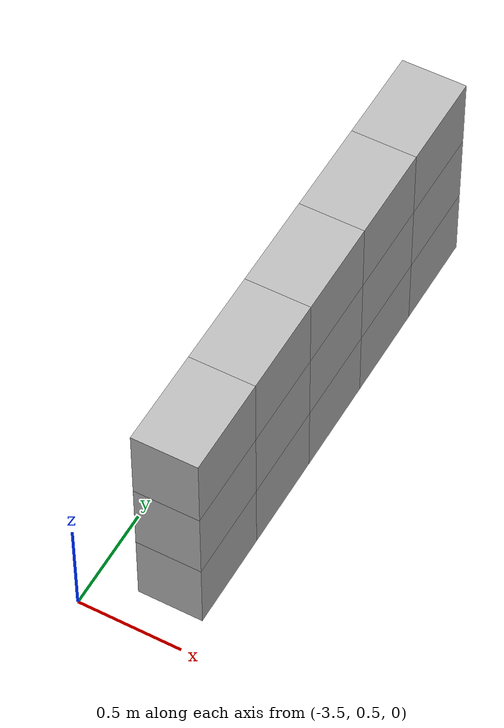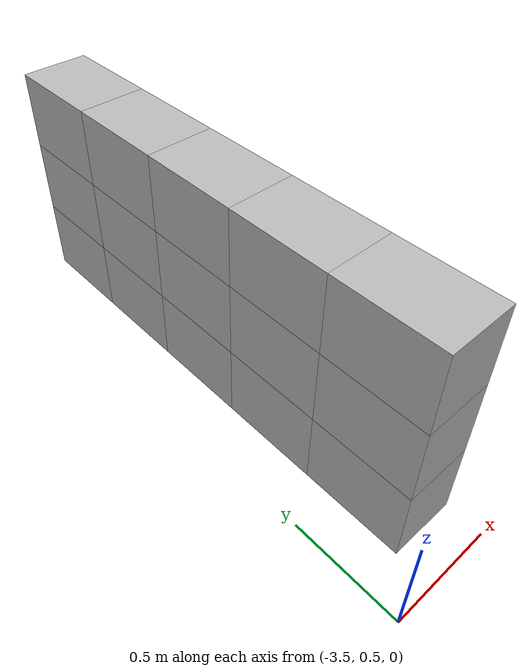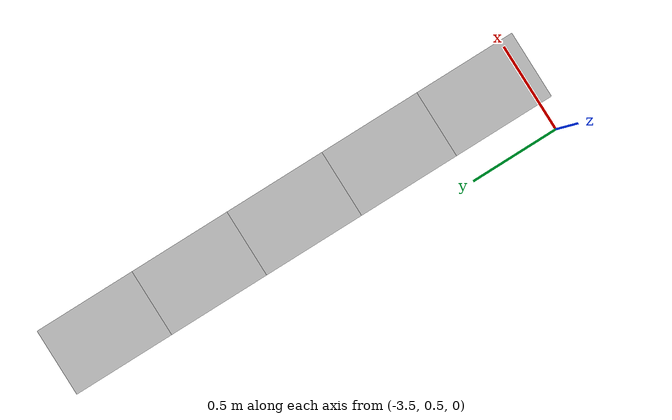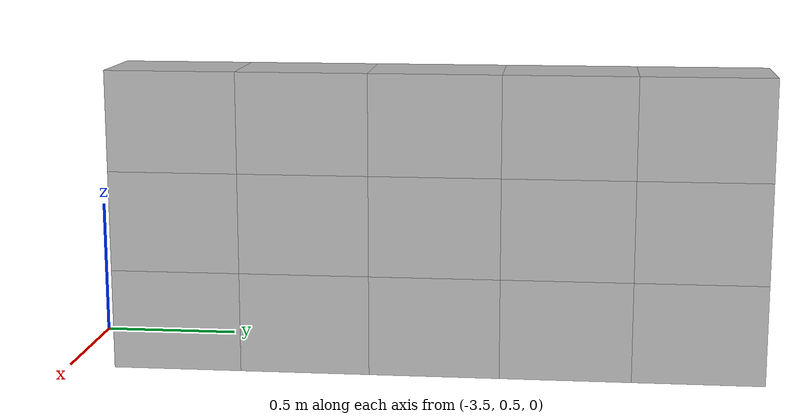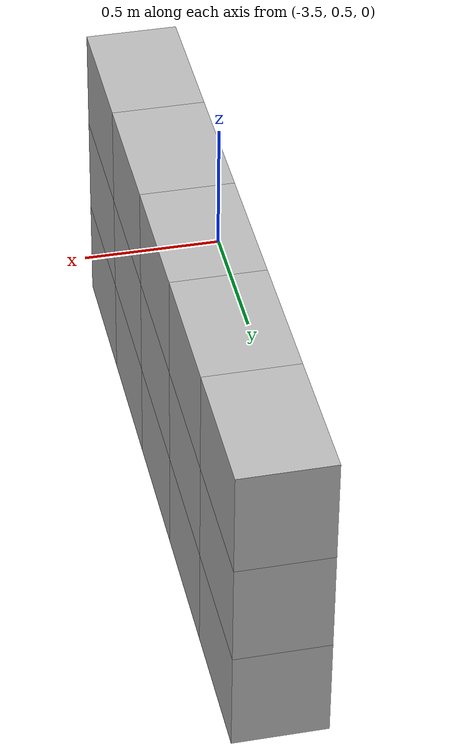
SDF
<?xml version='1_0'?>
<sdf version="1.5">
  <model name="realistic_curve_side1_2">
    <pose>0 0 0 0 0 1.57079633</pose>
    <static>true</static>

	<!-- 9 row -->
    <link name="link_24">
      <collision name="collision_24">
        <pose>0.9 3.15 0.9 0 1.5708</pose>
        <geometry>
          <box>
            <size>0.31 0.465 0.36</size>
          </box>
        </geometry>
      </collision>
      <visual name='visual_24'>
        <pose>0.9 3.15 0.9 0 0 1.5708</pose>
        <geometry>
            <mesh>
              <uri>model://L-corridor_curve_real/meshes/exact_blue_circle_border.dae</uri>
            </mesh>
        </geometry>
      </visual>
    </link>

    <link name="link_25">
      <collision name="collision_25">
        <pose>0.9 3.15 0.18 0 0 1.5708</pose>
        <geometry>
          <box>
            <size>0.31 0.465 0.36</size>
          </box>
        </geometry>
      </collision>
      <visual name='visual_25'>
        <pose>0.9 3.15 0.18 0 0 1.5708</pose>
        <geometry>
            <mesh>
              <uri>model://L-corridor_curve_real/meshes/exact_red_circle_border.dae</uri>
            </mesh>
        </geometry>
      </visual>
    </link>

    <link name="link_26">
      <collision name="collision_26">
        <pose>0.9 3.15 0.54 0 0 1.5708</pose>
        <geometry>
          <box>
            <size>0.31 0.465 0.36</size>
          </box>
        </geometry>
      </collision>
      <visual name='visual_26'>
        <pose>0.9 3.15 0.54 0 0 1.5708</pose>
        <geometry>
            <mesh>
              <uri>model://L-corridor_curve_real/meshes/exact_green_circle_border.dae</uri>
            </mesh>
        </geometry>
      </visual>
    </link>

	<!-- 10 row -->
    <link name="link_27">
      <collision name="collision_27">
        <pose>1.365 3.15 0.18 0 0 1.5708</pose>
        <geometry>
          <box>
            <size>0.31 0.465 0.36</size>
          </box>
        </geometry>
      </collision>
      <visual name='visual_27'>
        <pose>1.365 3.15 0.18 0 0 1.5708</pose>
        <geometry>
            <mesh>
              <uri>model://L-corridor_curve_real/meshes/exact_blue_circle_border.dae</uri>
            </mesh>
        </geometry>
      </visual>
    </link>
    <link name="link_28">
      <collision name="collision_28">
        <pose>1.365 3.15 0.54 0 0 1.5708</pose>
        <geometry>
          <box>
            <size>0.31 0.465 0.36</size>
          </box>
        </geometry>
      </collision>
      <visual name='visual_28'>
        <pose>1.365 3.15 0.54 0 0 1.5708</pose>
        <geometry>
            <mesh>
              <uri>model://L-corridor_curve_real/meshes/exact_red_circle_border.dae</uri>
            </mesh>
        </geometry>
      </visual>
    </link>

    <link name="link_29">
      <collision name="collision_29">
        <pose>1.365 3.15 0.9 0 0 1.5708</pose>
        <geometry>
          <box>
            <size>0.31 0.465 0.36</size>
          </box>
        </geometry>
      </collision>
      <visual name='visual_29'>
        <pose>1.365 3.15 0.9 0 0 1.5708</pose>
        <geometry>
            <mesh>
              <uri>model://L-corridor_curve_real/meshes/exact_green_circle_border.dae</uri>
            </mesh>
        </geometry>
      </visual>
    </link>

	<!-- 11 row -->
    <link name="link_30">
      <collision name="collision_30">
        <pose>1.83 3.15 0.54 0 0 1.5708</pose>
        <geometry>
          <box>
            <size>0.31 0.465 0.36</size>
          </box>
        </geometry>
      </collision>
      <visual name='visual_30'>
        <pose>1.83 3.15 0.54 0 0 1.5708</pose>
        <geometry>
            <mesh>
              <uri>model://L-corridor_curve_real/meshes/exact_blue_circle_border.dae</uri>
            </mesh>
        </geometry>
      </visual>
    </link>

    <link name="link_31">
      <collision name="collision_31">
        <pose>1.83 3.15 0.9 0 0 1.5708</pose>
        <geometry>
          <box>
            <size>0.31 0.465 0.36</size>
          </box>
        </geometry>
      </collision>
      <visual name='visual_31'>
        <pose>1.83 3.15 0.9 0 0 1.5708</pose>
        <geometry>
            <mesh>
              <uri>model://L-corridor_curve_real/meshes/exact_red_circle_border.dae</uri>
            </mesh>
        </geometry>
      </visual>
    </link>

    <link name="link_32">
      <collision name="collision_32">
        <pose>1.83 3.15 0.18 0 0 1.5708</pose>
        <geometry>
          <box>
            <size>0.31 0.465 0.36</size>
          </box>
        </geometry>
      </collision>
      <visual name='visual_32'>
        <pose>1.83 3.15 0.18 0 0 1.5708</pose>
        <geometry>
            <mesh>
              <uri>model://L-corridor_curve_real/meshes/exact_green_circle_border.dae</uri>
            </mesh>
        </geometry>
      </visual>
    </link>

	<!-- 12 row -->
    <link name="link_33">
      <collision name="collision_33">
        <pose>2.295 3.15 0.9 0 1.5708</pose>
        <geometry>
          <box>
            <size>0.31 0.465 0.36</size>
          </box>
        </geometry>
      </collision>
      <visual name='visual_33'>
        <pose>2.295 3.15 0.9 0 0 1.5708</pose>
        <geometry>
            <mesh>
              <uri>model://L-corridor_curve_real/meshes/exact_blue_circle_border.dae</uri>
            </mesh>
        </geometry>
      </visual>
    </link>

    <link name="link_34">
      <collision name="collision_34">
        <pose>2.295 3.15 0.18 0 0 1.5708</pose>
        <geometry>
          <box>
            <size>0.31 0.465 0.36</size>
          </box>
        </geometry>
      </collision>
      <visual name='visual_34'>
        <pose>2.295 3.15 0.18 0 0 1.5708</pose>
        <geometry>
            <mesh>
              <uri>model://L-corridor_curve_real/meshes/exact_red_circle_border.dae</uri>
            </mesh>
        </geometry>
      </visual>
    </link>

    <link name="link_35">
      <collision name="collision_35">
        <pose>2.295 3.15 0.54 0 0 1.5708</pose>
        <geometry>
          <box>
            <size>0.31 0.465 0.36</size>
          </box>
        </geometry>
      </collision>
      <visual name='visual_35'>
        <pose>2.295 3.15 0.54 0 0 1.5708</pose>
        <geometry>
            <mesh>
              <uri>model://L-corridor_curve_real/meshes/exact_green_circle_border.dae</uri>
            </mesh>
        </geometry>
      </visual>
    </link>

	<!-- 10 row -->
    <link name="link_36">
      <collision name="collision_36">
        <pose>2.76 3.15 0.18 0 0 1.5708</pose>
        <geometry>
          <box>
            <size>0.31 0.465 0.36</size>
          </box>
        </geometry>
      </collision>
      <visual name='visual_36'>
        <pose>2.76 3.15 0.18 0 0 1.5708</pose>
        <geometry>
            <mesh>
              <uri>model://L-corridor_curve_real/meshes/exact_blue_circle_border.dae</uri>
            </mesh>
        </geometry>
      </visual>
    </link>
    <link name="link_37">
      <collision name="collision_37">
        <pose>2.76 3.15 0.54 0 0 1.5708</pose>
        <geometry>
          <box>
            <size>0.31 0.465 0.36</size>
          </box>
        </geometry>
      </collision>
      <visual name='visual_37'>
        <pose>2.76 3.15 0.54 0 0 1.5708</pose>
        <geometry>
            <mesh>
              <uri>model://L-corridor_curve_real/meshes/exact_red_circle_border.dae</uri>
            </mesh>
        </geometry>
      </visual>
    </link>

    <link name="link_38">
      <collision name="collision_38">
        <pose>2.76 3.15 0.9 0 0 1.5708</pose>
        <geometry>
          <box>
            <size>0.31 0.465 0.36</size>
          </box>
        </geometry>
      </collision>
      <visual name='visual_38'>
        <pose>2.76 3.15 0.9 0 0 1.5708</pose>
        <geometry>
            <mesh>
              <uri>model://L-corridor_curve_real/meshes/exact_green_circle_border.dae</uri>
            </mesh>
        </geometry>
      </visual>
    </link>

  </model>
</sdf>
